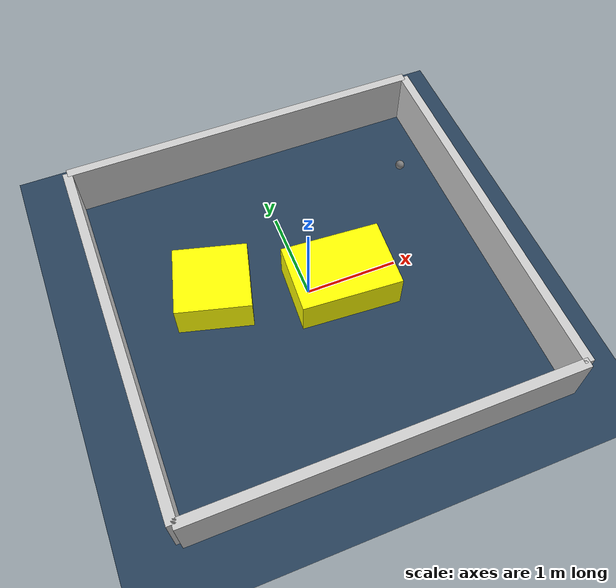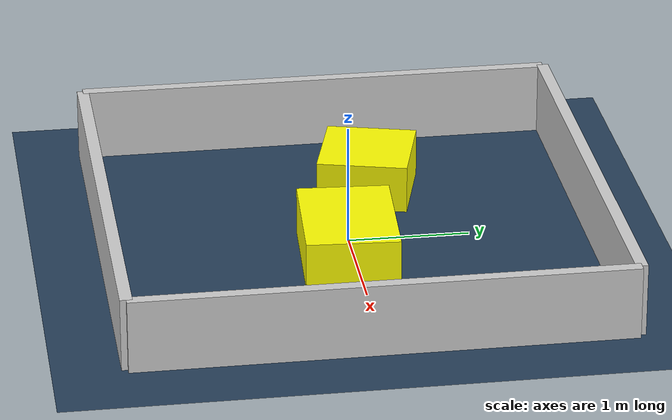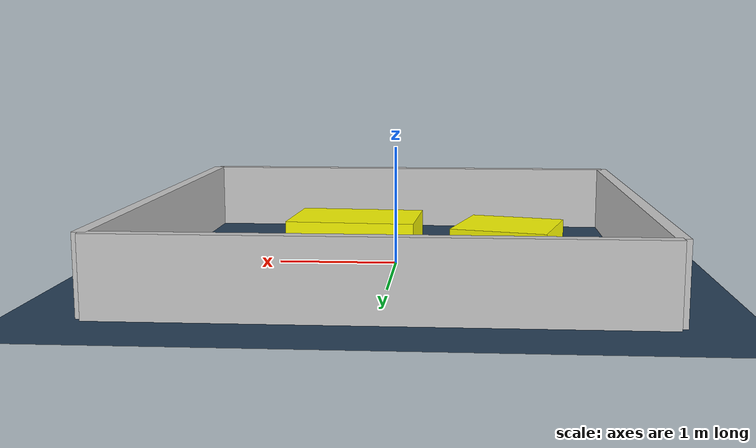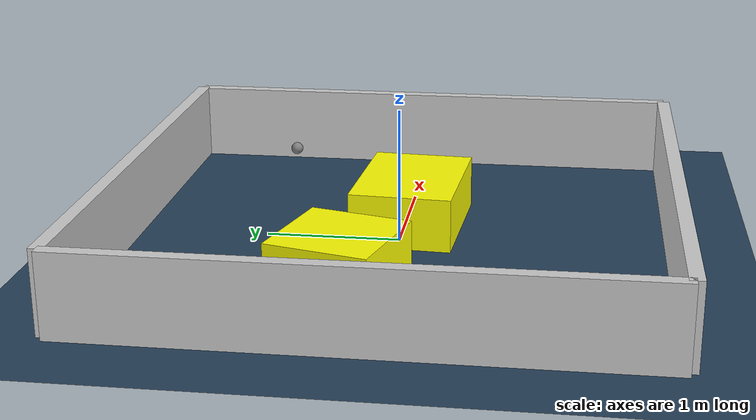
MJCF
<?xml version="1.0" ?>
<mujoco model="generated_environment">
  <option timestep="0.01" integrator="RK4" cone="elliptic"/>
  <default>
    <geom density="1"/>
  </default>
  <asset>
    <texture builtin="gradient" height="3072" rgb1="0.3 0.5 0.7" rgb2="0 0 0" type="skybox" width="512"/>
    <texture builtin="checker" height="300" mark="edge" markrgb="0.8 0.8 0.8" name="groundplane" rgb1="0.2 0.3 0.4" rgb2="0.1 0.2 0.3" type="2d" width="300"/>
    <material name="groundplane" reflectance="0.2" texrepeat="5 5" texture="groundplane" texuniform="true"/>
    <material name="robot" rgba="0.0 1.0 0.0 1"/>
  </asset>
  <worldbody>
    <light dir="0 0 -1" directional="true" pos="0 0 1.5"/>
    <geom condim="4" friction="1.0 0.005 0.001" material="groundplane" name="floor" size="0 0 0.05" type="plane"/>
    <body name="walls">
      <geom name="wall_1" condim="4" pos="-2.0 0.0 0.3" rgba="0.800000011920929 0.800000011920929 0.800000011920929 1.0" size="0.05 2.0 0.3" type="box"/>
      <geom name="wall_2" condim="4" pos="2.0 0.0 0.3" rgba="0.800000011920929 0.800000011920929 0.800000011920929 1.0" size="0.05 2.0 0.3" type="box"/>
      <geom name="wall_3" condim="4" pos="0.0 -2.0 0.3" rgba="0.800000011920929 0.800000011920929 0.800000011920929 1.0" size="2.0 0.05 0.3" type="box"/>
      <geom name="wall_4" condim="4" pos="0.0 2.0 0.3" rgba="0.800000011920929 0.800000011920929 0.800000011920929 1.0" size="2.0 0.05 0.3" type="box"/>
    </body>
    <body name="robot">
      <joint name="joint_x" type="slide" pos="0 0 0" axis="1 0 0"/>
      <joint name="joint_y" type="slide" pos="0 0 0" axis="0 1 0"/>
      <geom name="robot" type="sphere" pos="1.566204085440678 1.0864964466704854 0.2" size="0.05" mass="5." friction="1.0 0.005 0.0001" condim="4"/>
      <site name="sensor_ball"/>
    </body>
    <body name="obstacle_1_movable">
      <geom name="obstacle_1_movable" condim="4" pos="0.34265602107565285 -0.051735578162377616 0.2" euler="0 0 266.4975815876934" friction="1.0 0.005 0.001" rgba="1 1 0 1" size="0.3808889902600289 0.5349069100596475 0.2" type="box" mass="0.1"/>
      <joint type="free"/>
    </body>
    <body name="obstacle_2_movable">
      <geom name="obstacle_2_movable" condim="4" pos="-0.9440485045484935 0.29672900410307634 0.2" euler="0 0 164.99428013930577" friction="1.0 0.005 0.001" rgba="1 1 0 1" size="0.39020320876774106 0.37844806063223635 0.2" type="box" mass="0.1"/>
      <joint type="free"/>
    </body>
  </worldbody>
  <actuator>
    <motor name="actuator_x" joint="joint_x" gear="1" ctrlrange="-1 1"/>
    <motor name="actuator_y" joint="joint_y" gear="1" ctrlrange="-1 1"/>
  </actuator>
</mujoco>
